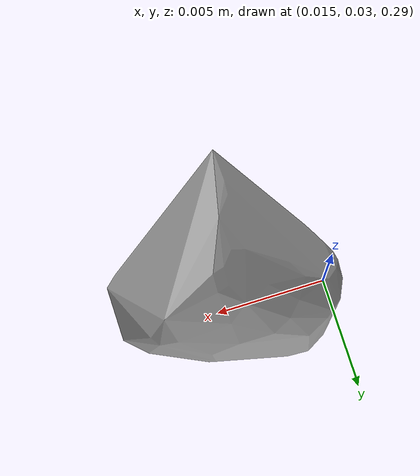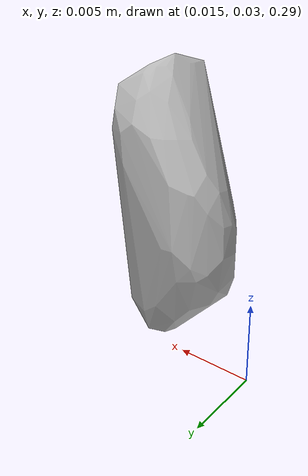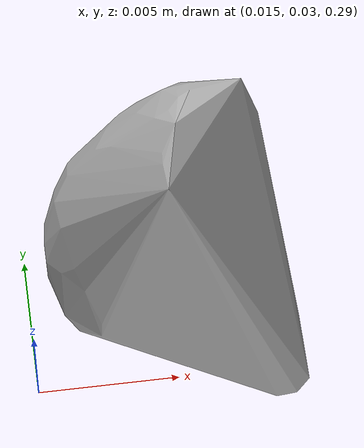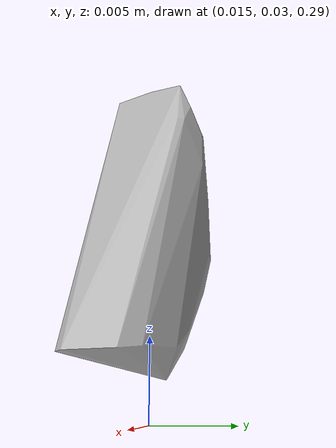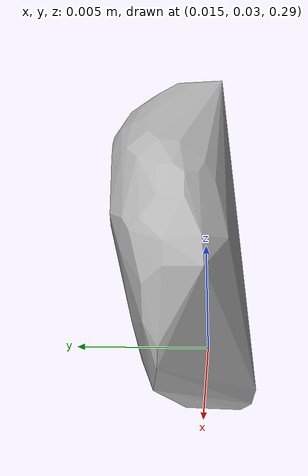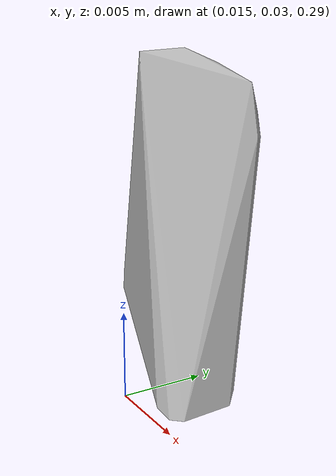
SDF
<?xml version="1.0"?>
<sdf version="1.7">
  <model name="vascular_partexport059">
    <link name="vascular_partexport059_body">
      <visual name="vascular_partexport059_visual">
        <geometry>
          <mesh>
            <uri>vascular_partexport059.obj</uri>
          </mesh>
        </geometry>
      </visual>
      <collision name="vascular_partexport059_collision">
        <geometry>
          <mesh>
            <uri>vascular_partexport059.obj</uri>
          </mesh>
        </geometry>
      </collision>
    </link>
    <frame name="vascular_partexport059_center">
      <pose relative_to="vascular_partexport059_body">0 0 0 0 0 0</pose>
    </frame>
  </model>
</sdf>
